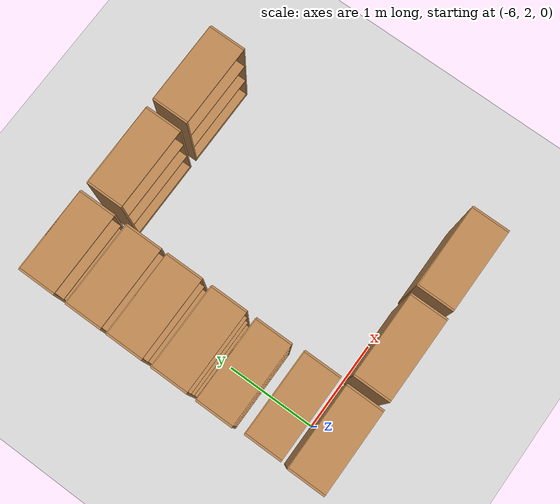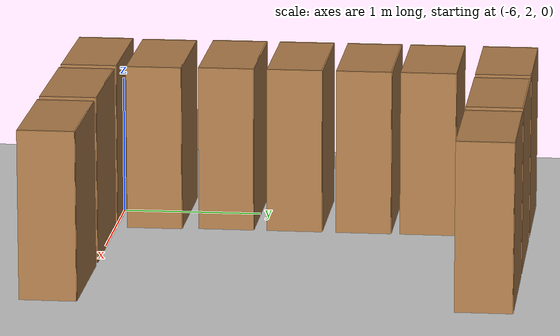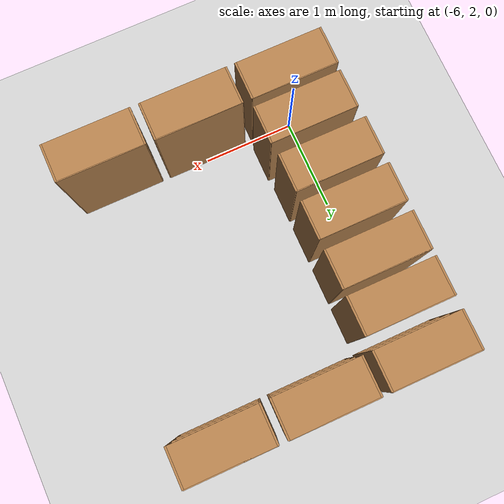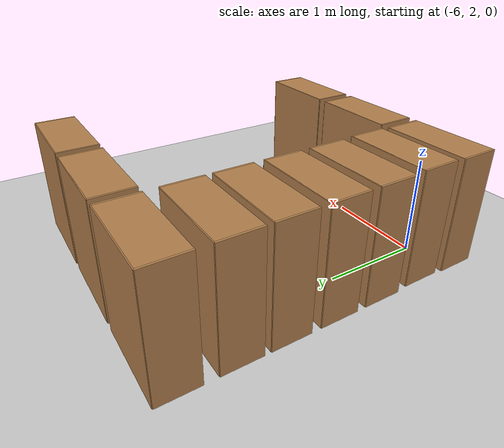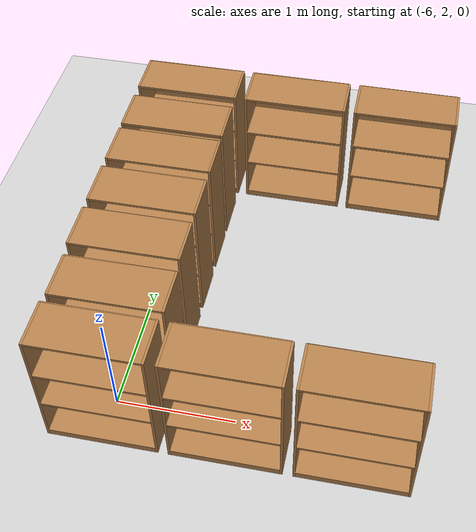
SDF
<sdf version="1.4">
 <world name="default">
  <model name="ground_plane">
   <static>1</static>
   <link name="link">
    <collision name="collision">
     <geometry><plane><normal>0 0 1</normal><size>100 100</size></plane></geometry>
     <surface><friction><ode><mu>100</mu><mu2>50</mu2></ode></friction></surface>
    </collision>
    <visual name="visual">
     <cast_shadows>0</cast_shadows>
     <geometry><plane><normal>0 0 1</normal><size>100 100</size></plane></geometry>
     <material>
      <script><uri>file://media/materials/scripts/gazebo.material</uri><name>Gazebo/Grey</name></script>
     </material>
    </visual>
    <velocity_decay><linear>0</linear><angular>0</angular></velocity_decay>
   </link>
  </model>
  <model name="bookshelf">
   <static>1</static>
   <link name="link">
    <inertial><mass>1</mass></inertial>
    <collision name="back">
     <pose>0 0.005 0.6 0 -0 0</pose>
     <geometry><box><size>0.9 0.01 1.2</size></box></geometry>
    </collision>
    <visual name="visual1">
     <pose>0 0.005 0.6 0 -0 0</pose>
     <geometry><box><size>0.9 0.01 1.2</size></box></geometry>
     <material>
      <script><uri>file://media/materials/scripts/gazebo.material</uri><name>Gazebo/Wood</name></script>
     </material>
    </visual>
    <collision name="left_side">
     <pose>0.45 -0.195 0.6 0 -0 0</pose>
     <geometry><box><size>0.02 0.4 1.2</size></box></geometry>
    </collision>
    <visual name="visual2">
     <pose>0.45 -0.195 0.6 0 -0 0</pose>
     <geometry><box><size>0.02 0.4 1.2</size></box></geometry>
     <material>
      <script><uri>file://media/materials/scripts/gazebo.material</uri><name>Gazebo/Wood</name></script>
     </material>
    </visual>
    <collision name="right_side">
     <pose>-0.45 -0.195 0.6 0 -0 0</pose>
     <geometry><box><size>0.02 0.4 1.2</size></box></geometry>
    </collision>
    <visual name="visual3">
     <pose>-0.45 -0.195 0.6 0 -0 0</pose>
     <geometry><box><size>0.02 0.4 1.2</size></box></geometry>
     <material>
      <script><uri>file://media/materials/scripts/gazebo.material</uri><name>Gazebo/Wood</name></script>
     </material>
    </visual>
    <collision name="bottom">
     <pose>0 -0.195 0.03 0 -0 0</pose>
     <geometry><box><size>0.88 0.4 0.06</size></box></geometry>
    </collision>
    <visual name="visual4">
     <pose>0 -0.195 0.03 0 -0 0</pose>
     <geometry><box><size>0.88 0.4 0.06</size></box></geometry>
     <material>
      <script><uri>file://media/materials/scripts/gazebo.material</uri><name>Gazebo/Wood</name></script>
     </material>
    </visual>
    <collision name="top">
     <pose>0 -0.195 1.19 0 -0 0</pose>
     <geometry><box><size>0.88 0.4 0.02</size></box></geometry>
    </collision>
    <visual name="visual5">
     <pose>0 -0.195 1.19 0 -0 0</pose>
     <geometry><box><size>0.88 0.4 0.02</size></box></geometry>
     <material>
      <script><uri>file://media/materials/scripts/gazebo.material</uri><name>Gazebo/Wood</name></script>
     </material>
    </visual>
    <collision name="low_shelf">
     <pose>0 -0.195 0.43 0 -0 0</pose>
     <geometry><box><size>0.88 0.4 0.02</size></box></geometry>
    </collision>
    <visual name="visual6">
     <pose>0 -0.195 0.43 0 -0 0</pose>
     <geometry><box><size>0.88 0.4 0.02</size></box></geometry>
     <material>
      <script><uri>file://media/materials/scripts/gazebo.material</uri><name>Gazebo/Wood</name></script>
     </material>
    </visual>
    <collision name="high_shelf">
     <pose>0 -0.195 0.8 0 -0 0</pose>
     <geometry><box><size>0.88 0.4 0.02</size></box></geometry>
    </collision>
    <visual name="visual7">
     <pose>0 -0.195 0.8 0 -0 0</pose>
     <geometry><box><size>0.88 0.4 0.02</size></box></geometry>
     <material>
      <script><uri>file://media/materials/scripts/gazebo.material</uri><name>Gazebo/Wood</name></script>
     </material>
    </visual>
    <velocity_decay><linear>0</linear><angular>0</angular></velocity_decay>
   </link>
   <pose>-5 2 0 0 -0 0</pose>
  </model>
  <model name="bookshelf_0">
   <static>1</static>
   <link name="link">
    <inertial><mass>1</mass></inertial>
    <collision name="back">
     <pose>0 0.005 0.6 0 -0 0</pose>
     <geometry><box><size>0.9 0.01 1.2</size></box></geometry>
    </collision>
    <visual name="visual1">
     <pose>0 0.005 0.6 0 -0 0</pose>
     <geometry><box><size>0.9 0.01 1.2</size></box></geometry>
     <material>
      <script><uri>file://media/materials/scripts/gazebo.material</uri><name>Gazebo/Wood</name></script>
     </material>
    </visual>
    <collision name="left_side">
     <pose>0.45 -0.195 0.6 0 -0 0</pose>
     <geometry><box><size>0.02 0.4 1.2</size></box></geometry>
    </collision>
    <visual name="visual2">
     <pose>0.45 -0.195 0.6 0 -0 0</pose>
     <geometry><box><size>0.02 0.4 1.2</size></box></geometry>
     <material>
      <script><uri>file://media/materials/scripts/gazebo.material</uri><name>Gazebo/Wood</name></script>
     </material>
    </visual>
    <collision name="right_side">
     <pose>-0.45 -0.195 0.6 0 -0 0</pose>
     <geometry><box><size>0.02 0.4 1.2</size></box></geometry>
    </collision>
    <visual name="visual3">
     <pose>-0.45 -0.195 0.6 0 -0 0</pose>
     <geometry><box><size>0.02 0.4 1.2</size></box></geometry>
     <material>
      <script><uri>file://media/materials/scripts/gazebo.material</uri><name>Gazebo/Wood</name></script>
     </material>
    </visual>
    <collision name="bottom">
     <pose>0 -0.195 0.03 0 -0 0</pose>
     <geometry><box><size>0.88 0.4 0.06</size></box></geometry>
    </collision>
    <visual name="visual4">
     <pose>0 -0.195 0.03 0 -0 0</pose>
     <geometry><box><size>0.88 0.4 0.06</size></box></geometry>
     <material>
      <script><uri>file://media/materials/scripts/gazebo.material</uri><name>Gazebo/Wood</name></script>
     </material>
    </visual>
    <collision name="top">
     <pose>0 -0.195 1.19 0 -0 0</pose>
     <geometry><box><size>0.88 0.4 0.02</size></box></geometry>
    </collision>
    <visual name="visual5">
     <pose>0 -0.195 1.19 0 -0 0</pose>
     <geometry><box><size>0.88 0.4 0.02</size></box></geometry>
     <material>
      <script><uri>file://media/materials/scripts/gazebo.material</uri><name>Gazebo/Wood</name></script>
     </material>
    </visual>
    <collision name="low_shelf">
     <pose>0 -0.195 0.43 0 -0 0</pose>
     <geometry><box><size>0.88 0.4 0.02</size></box></geometry>
    </collision>
    <visual name="visual6">
     <pose>0 -0.195 0.43 0 -0 0</pose>
     <geometry><box><size>0.88 0.4 0.02</size></box></geometry>
     <material>
      <script><uri>file://media/materials/scripts/gazebo.material</uri><name>Gazebo/Wood</name></script>
     </material>
    </visual>
    <collision name="high_shelf">
     <pose>0 -0.195 0.8 0 -0 0</pose>
     <geometry><box><size>0.88 0.4 0.02</size></box></geometry>
    </collision>
    <visual name="visual7">
     <pose>0 -0.195 0.8 0 -0 0</pose>
     <geometry><box><size>0.88 0.4 0.02</size></box></geometry>
     <material>
      <script><uri>file://media/materials/scripts/gazebo.material</uri><name>Gazebo/Wood</name></script>
     </material>
    </visual>
    <velocity_decay><linear>0</linear><angular>0</angular></velocity_decay>
   </link>
   <pose>-4 2 0 0 -0 0</pose>
  </model>
  <model name="bookshelf_4">
   <static>1</static>
   <link name="link">
    <inertial><mass>1</mass></inertial>
    <collision name="back">
     <pose>0 0.005 0.6 0 -0 0</pose>
     <geometry><box><size>0.9 0.01 1.2</size></box></geometry>
    </collision>
    <visual name="visual1">
     <pose>0 0.005 0.6 0 -0 0</pose>
     <geometry><box><size>0.9 0.01 1.2</size></box></geometry>
     <material>
      <script><uri>file://media/materials/scripts/gazebo.material</uri><name>Gazebo/Wood</name></script>
     </material>
    </visual>
    <collision name="left_side">
     <pose>0.45 -0.195 0.6 0 -0 0</pose>
     <geometry><box><size>0.02 0.4 1.2</size></box></geometry>
    </collision>
    <visual name="visual2">
     <pose>0.45 -0.195 0.6 0 -0 0</pose>
     <geometry><box><size>0.02 0.4 1.2</size></box></geometry>
     <material>
      <script><uri>file://media/materials/scripts/gazebo.material</uri><name>Gazebo/Wood</name></script>
     </material>
    </visual>
    <collision name="right_side">
     <pose>-0.45 -0.195 0.6 0 -0 0</pose>
     <geometry><box><size>0.02 0.4 1.2</size></box></geometry>
    </collision>
    <visual name="visual3">
     <pose>-0.45 -0.195 0.6 0 -0 0</pose>
     <geometry><box><size>0.02 0.4 1.2</size></box></geometry>
     <material>
      <script><uri>file://media/materials/scripts/gazebo.material</uri><name>Gazebo/Wood</name></script>
     </material>
    </visual>
    <collision name="bottom">
     <pose>0 -0.195 0.03 0 -0 0</pose>
     <geometry><box><size>0.88 0.4 0.06</size></box></geometry>
    </collision>
    <visual name="visual4">
     <pose>0 -0.195 0.03 0 -0 0</pose>
     <geometry><box><size>0.88 0.4 0.06</size></box></geometry>
     <material>
      <script><uri>file://media/materials/scripts/gazebo.material</uri><name>Gazebo/Wood</name></script>
     </material>
    </visual>
    <collision name="top">
     <pose>0 -0.195 1.19 0 -0 0</pose>
     <geometry><box><size>0.88 0.4 0.02</size></box></geometry>
    </collision>
    <visual name="visual5">
     <pose>0 -0.195 1.19 0 -0 0</pose>
     <geometry><box><size>0.88 0.4 0.02</size></box></geometry>
     <material>
      <script><uri>file://media/materials/scripts/gazebo.material</uri><name>Gazebo/Wood</name></script>
     </material>
    </visual>
    <collision name="low_shelf">
     <pose>0 -0.195 0.43 0 -0 0</pose>
     <geometry><box><size>0.88 0.4 0.02</size></box></geometry>
    </collision>
    <visual name="visual6">
     <pose>0 -0.195 0.43 0 -0 0</pose>
     <geometry><box><size>0.88 0.4 0.02</size></box></geometry>
     <material>
      <script><uri>file://media/materials/scripts/gazebo.material</uri><name>Gazebo/Wood</name></script>
     </material>
    </visual>
    <collision name="high_shelf">
     <pose>0 -0.195 0.8 0 -0 0</pose>
     <geometry><box><size>0.88 0.4 0.02</size></box></geometry>
    </collision>
    <visual name="visual7">
     <pose>0 -0.195 0.8 0 -0 0</pose>
     <geometry><box><size>0.88 0.4 0.02</size></box></geometry>
     <material>
      <script><uri>file://media/materials/scripts/gazebo.material</uri><name>Gazebo/Wood</name></script>
     </material>
    </visual>
    <velocity_decay><linear>0</linear><angular>0</angular></velocity_decay>
   </link>
   <pose>-5 5 0 0 -0 0</pose>
  </model>
  <model name="bookshelf_5">
   <static>1</static>
   <link name="link">
    <inertial><mass>1</mass></inertial>
    <collision name="back">
     <pose>0 0.005 0.6 0 -0 0</pose>
     <geometry><box><size>0.9 0.01 1.2</size></box></geometry>
    </collision>
    <visual name="visual1">
     <pose>0 0.005 0.6 0 -0 0</pose>
     <geometry><box><size>0.9 0.01 1.2</size></box></geometry>
     <material>
      <script><uri>file://media/materials/scripts/gazebo.material</uri><name>Gazebo/Wood</name></script>
     </material>
    </visual>
    <collision name="left_side">
     <pose>0.45 -0.195 0.6 0 -0 0</pose>
     <geometry><box><size>0.02 0.4 1.2</size></box></geometry>
    </collision>
    <visual name="visual2">
     <pose>0.45 -0.195 0.6 0 -0 0</pose>
     <geometry><box><size>0.02 0.4 1.2</size></box></geometry>
     <material>
      <script><uri>file://media/materials/scripts/gazebo.material</uri><name>Gazebo/Wood</name></script>
     </material>
    </visual>
    <collision name="right_side">
     <pose>-0.45 -0.195 0.6 0 -0 0</pose>
     <geometry><box><size>0.02 0.4 1.2</size></box></geometry>
    </collision>
    <visual name="visual3">
     <pose>-0.45 -0.195 0.6 0 -0 0</pose>
     <geometry><box><size>0.02 0.4 1.2</size></box></geometry>
     <material>
      <script><uri>file://media/materials/scripts/gazebo.material</uri><name>Gazebo/Wood</name></script>
     </material>
    </visual>
    <collision name="bottom">
     <pose>0 -0.195 0.03 0 -0 0</pose>
     <geometry><box><size>0.88 0.4 0.06</size></box></geometry>
    </collision>
    <visual name="visual4">
     <pose>0 -0.195 0.03 0 -0 0</pose>
     <geometry><box><size>0.88 0.4 0.06</size></box></geometry>
     <material>
      <script><uri>file://media/materials/scripts/gazebo.material</uri><name>Gazebo/Wood</name></script>
     </material>
    </visual>
    <collision name="top">
     <pose>0 -0.195 1.19 0 -0 0</pose>
     <geometry><box><size>0.88 0.4 0.02</size></box></geometry>
    </collision>
    <visual name="visual5">
     <pose>0 -0.195 1.19 0 -0 0</pose>
     <geometry><box><size>0.88 0.4 0.02</size></box></geometry>
     <material>
      <script><uri>file://media/materials/scripts/gazebo.material</uri><name>Gazebo/Wood</name></script>
     </material>
    </visual>
    <collision name="low_shelf">
     <pose>0 -0.195 0.43 0 -0 0</pose>
     <geometry><box><size>0.88 0.4 0.02</size></box></geometry>
    </collision>
    <visual name="visual6">
     <pose>0 -0.195 0.43 0 -0 0</pose>
     <geometry><box><size>0.88 0.4 0.02</size></box></geometry>
     <material>
      <script><uri>file://media/materials/scripts/gazebo.material</uri><name>Gazebo/Wood</name></script>
     </material>
    </visual>
    <collision name="high_shelf">
     <pose>0 -0.195 0.8 0 -0 0</pose>
     <geometry><box><size>0.88 0.4 0.02</size></box></geometry>
    </collision>
    <visual name="visual7">
     <pose>0 -0.195 0.8 0 -0 0</pose>
     <geometry><box><size>0.88 0.4 0.02</size></box></geometry>
     <material>
      <script><uri>file://media/materials/scripts/gazebo.material</uri><name>Gazebo/Wood</name></script>
     </material>
    </visual>
    <velocity_decay><linear>0</linear><angular>0</angular></velocity_decay>
   </link>
   <pose>-4 5 0 0 -0 0</pose>
  </model>
  <model name="bookshelf_9">
   <static>1</static>
   <link name="link">
    <inertial><mass>1</mass></inertial>
    <collision name="back">
     <pose>0 0.005 0.6 0 -0 0</pose>
     <geometry><box><size>0.9 0.01 1.2</size></box></geometry>
    </collision>
    <visual name="visual1">
     <pose>0 0.005 0.6 0 -0 0</pose>
     <geometry><box><size>0.9 0.01 1.2</size></box></geometry>
     <material>
      <script><uri>file://media/materials/scripts/gazebo.material</uri><name>Gazebo/Wood</name></script>
     </material>
    </visual>
    <collision name="left_side">
     <pose>0.45 -0.195 0.6 0 -0 0</pose>
     <geometry><box><size>0.02 0.4 1.2</size></box></geometry>
    </collision>
    <visual name="visual2">
     <pose>0.45 -0.195 0.6 0 -0 0</pose>
     <geometry><box><size>0.02 0.4 1.2</size></box></geometry>
     <material>
      <script><uri>file://media/materials/scripts/gazebo.material</uri><name>Gazebo/Wood</name></script>
     </material>
    </visual>
    <collision name="right_side">
     <pose>-0.45 -0.195 0.6 0 -0 0</pose>
     <geometry><box><size>0.02 0.4 1.2</size></box></geometry>
    </collision>
    <visual name="visual3">
     <pose>-0.45 -0.195 0.6 0 -0 0</pose>
     <geometry><box><size>0.02 0.4 1.2</size></box></geometry>
     <material>
      <script><uri>file://media/materials/scripts/gazebo.material</uri><name>Gazebo/Wood</name></script>
     </material>
    </visual>
    <collision name="bottom">
     <pose>0 -0.195 0.03 0 -0 0</pose>
     <geometry><box><size>0.88 0.4 0.06</size></box></geometry>
    </collision>
    <visual name="visual4">
     <pose>0 -0.195 0.03 0 -0 0</pose>
     <geometry><box><size>0.88 0.4 0.06</size></box></geometry>
     <material>
      <script><uri>file://media/materials/scripts/gazebo.material</uri><name>Gazebo/Wood</name></script>
     </material>
    </visual>
    <collision name="top">
     <pose>0 -0.195 1.19 0 -0 0</pose>
     <geometry><box><size>0.88 0.4 0.02</size></box></geometry>
    </collision>
    <visual name="visual5">
     <pose>0 -0.195 1.19 0 -0 0</pose>
     <geometry><box><size>0.88 0.4 0.02</size></box></geometry>
     <material>
      <script><uri>file://media/materials/scripts/gazebo.material</uri><name>Gazebo/Wood</name></script>
     </material>
    </visual>
    <collision name="low_shelf">
     <pose>0 -0.195 0.43 0 -0 0</pose>
     <geometry><box><size>0.88 0.4 0.02</size></box></geometry>
    </collision>
    <visual name="visual6">
     <pose>0 -0.195 0.43 0 -0 0</pose>
     <geometry><box><size>0.88 0.4 0.02</size></box></geometry>
     <material>
      <script><uri>file://media/materials/scripts/gazebo.material</uri><name>Gazebo/Wood</name></script>
     </material>
    </visual>
    <collision name="high_shelf">
     <pose>0 -0.195 0.8 0 -0 0</pose>
     <geometry><box><size>0.88 0.4 0.02</size></box></geometry>
    </collision>
    <visual name="visual7">
     <pose>0 -0.195 0.8 0 -0 0</pose>
     <geometry><box><size>0.88 0.4 0.02</size></box></geometry>
     <material>
      <script><uri>file://media/materials/scripts/gazebo.material</uri><name>Gazebo/Wood</name></script>
     </material>
    </visual>
    <velocity_decay><linear>0</linear><angular>0</angular></velocity_decay>
   </link>
   <pose>-6 2 0 0 -0 0</pose>
  </model>
  <model name="bookshelf_10">
   <static>1</static>
   <link name="link">
    <inertial><mass>1</mass></inertial>
    <collision name="back">
     <pose>0 0.005 0.6 0 -0 0</pose>
     <geometry><box><size>0.9 0.01 1.2</size></box></geometry>
    </collision>
    <visual name="visual1">
     <pose>0 0.005 0.6 0 -0 0</pose>
     <geometry><box><size>0.9 0.01 1.2</size></box></geometry>
     <material>
      <script><uri>file://media/materials/scripts/gazebo.material</uri><name>Gazebo/Wood</name></script>
     </material>
    </visual>
    <collision name="left_side">
     <pose>0.45 -0.195 0.6 0 -0 0</pose>
     <geometry><box><size>0.02 0.4 1.2</size></box></geometry>
    </collision>
    <visual name="visual2">
     <pose>0.45 -0.195 0.6 0 -0 0</pose>
     <geometry><box><size>0.02 0.4 1.2</size></box></geometry>
     <material>
      <script><uri>file://media/materials/scripts/gazebo.material</uri><name>Gazebo/Wood</name></script>
     </material>
    </visual>
    <collision name="right_side">
     <pose>-0.45 -0.195 0.6 0 -0 0</pose>
     <geometry><box><size>0.02 0.4 1.2</size></box></geometry>
    </collision>
    <visual name="visual3">
     <pose>-0.45 -0.195 0.6 0 -0 0</pose>
     <geometry><box><size>0.02 0.4 1.2</size></box></geometry>
     <material>
      <script><uri>file://media/materials/scripts/gazebo.material</uri><name>Gazebo/Wood</name></script>
     </material>
    </visual>
    <collision name="bottom">
     <pose>0 -0.195 0.03 0 -0 0</pose>
     <geometry><box><size>0.88 0.4 0.06</size></box></geometry>
    </collision>
    <visual name="visual4">
     <pose>0 -0.195 0.03 0 -0 0</pose>
     <geometry><box><size>0.88 0.4 0.06</size></box></geometry>
     <material>
      <script><uri>file://media/materials/scripts/gazebo.material</uri><name>Gazebo/Wood</name></script>
     </material>
    </visual>
    <collision name="top">
     <pose>0 -0.195 1.19 0 -0 0</pose>
     <geometry><box><size>0.88 0.4 0.02</size></box></geometry>
    </collision>
    <visual name="visual5">
     <pose>0 -0.195 1.19 0 -0 0</pose>
     <geometry><box><size>0.88 0.4 0.02</size></box></geometry>
     <material>
      <script><uri>file://media/materials/scripts/gazebo.material</uri><name>Gazebo/Wood</name></script>
     </material>
    </visual>
    <collision name="low_shelf">
     <pose>0 -0.195 0.43 0 -0 0</pose>
     <geometry><box><size>0.88 0.4 0.02</size></box></geometry>
    </collision>
    <visual name="visual6">
     <pose>0 -0.195 0.43 0 -0 0</pose>
     <geometry><box><size>0.88 0.4 0.02</size></box></geometry>
     <material>
      <script><uri>file://media/materials/scripts/gazebo.material</uri><name>Gazebo/Wood</name></script>
     </material>
    </visual>
    <collision name="high_shelf">
     <pose>0 -0.195 0.8 0 -0 0</pose>
     <geometry><box><size>0.88 0.4 0.02</size></box></geometry>
    </collision>
    <visual name="visual7">
     <pose>0 -0.195 0.8 0 -0 0</pose>
     <geometry><box><size>0.88 0.4 0.02</size></box></geometry>
     <material>
      <script><uri>file://media/materials/scripts/gazebo.material</uri><name>Gazebo/Wood</name></script>
     </material>
    </visual>
    <velocity_decay><linear>0</linear><angular>0</angular></velocity_decay>
   </link>
   <pose>-5.98174 2.47725 0 0 -0 0</pose>
  </model>
  <model name="bookshelf_13">
   <static>1</static>
   <link name="link">
    <inertial><mass>1</mass></inertial>
    <collision name="back">
     <pose>0 0.005 0.6 0 -0 0</pose>
     <geometry><box><size>0.9 0.01 1.2</size></box></geometry>
    </collision>
    <visual name="visual1">
     <pose>0 0.005 0.6 0 -0 0</pose>
     <geometry><box><size>0.9 0.01 1.2</size></box></geometry>
     <material>
      <script><uri>file://media/materials/scripts/gazebo.material</uri><name>Gazebo/Wood</name></script>
     </material>
    </visual>
    <collision name="left_side">
     <pose>0.45 -0.195 0.6 0 -0 0</pose>
     <geometry><box><size>0.02 0.4 1.2</size></box></geometry>
    </collision>
    <visual name="visual2">
     <pose>0.45 -0.195 0.6 0 -0 0</pose>
     <geometry><box><size>0.02 0.4 1.2</size></box></geometry>
     <material>
      <script><uri>file://media/materials/scripts/gazebo.material</uri><name>Gazebo/Wood</name></script>
     </material>
    </visual>
    <collision name="right_side">
     <pose>-0.45 -0.195 0.6 0 -0 0</pose>
     <geometry><box><size>0.02 0.4 1.2</size></box></geometry>
    </collision>
    <visual name="visual3">
     <pose>-0.45 -0.195 0.6 0 -0 0</pose>
     <geometry><box><size>0.02 0.4 1.2</size></box></geometry>
     <material>
      <script><uri>file://media/materials/scripts/gazebo.material</uri><name>Gazebo/Wood</name></script>
     </material>
    </visual>
    <collision name="bottom">
     <pose>0 -0.195 0.03 0 -0 0</pose>
     <geometry><box><size>0.88 0.4 0.06</size></box></geometry>
    </collision>
    <visual name="visual4">
     <pose>0 -0.195 0.03 0 -0 0</pose>
     <geometry><box><size>0.88 0.4 0.06</size></box></geometry>
     <material>
      <script><uri>file://media/materials/scripts/gazebo.material</uri><name>Gazebo/Wood</name></script>
     </material>
    </visual>
    <collision name="top">
     <pose>0 -0.195 1.19 0 -0 0</pose>
     <geometry><box><size>0.88 0.4 0.02</size></box></geometry>
    </collision>
    <visual name="visual5">
     <pose>0 -0.195 1.19 0 -0 0</pose>
     <geometry><box><size>0.88 0.4 0.02</size></box></geometry>
     <material>
      <script><uri>file://media/materials/scripts/gazebo.material</uri><name>Gazebo/Wood</name></script>
     </material>
    </visual>
    <collision name="low_shelf">
     <pose>0 -0.195 0.43 0 -0 0</pose>
     <geometry><box><size>0.88 0.4 0.02</size></box></geometry>
    </collision>
    <visual name="visual6">
     <pose>0 -0.195 0.43 0 -0 0</pose>
     <geometry><box><size>0.88 0.4 0.02</size></box></geometry>
     <material>
      <script><uri>file://media/materials/scripts/gazebo.material</uri><name>Gazebo/Wood</name></script>
     </material>
    </visual>
    <collision name="high_shelf">
     <pose>0 -0.195 0.8 0 -0 0</pose>
     <geometry><box><size>0.88 0.4 0.02</size></box></geometry>
    </collision>
    <visual name="visual7">
     <pose>0 -0.195 0.8 0 -0 0</pose>
     <geometry><box><size>0.88 0.4 0.02</size></box></geometry>
     <material>
      <script><uri>file://media/materials/scripts/gazebo.material</uri><name>Gazebo/Wood</name></script>
     </material>
    </visual>
    <velocity_decay><linear>0</linear><angular>0</angular></velocity_decay>
   </link>
   <pose>-6 3 0 0 -0 0</pose>
  </model>
  <model name="bookshelf_14">
   <static>1</static>
   <link name="link">
    <inertial><mass>1</mass></inertial>
    <collision name="back">
     <pose>0 0.005 0.6 0 -0 0</pose>
     <geometry><box><size>0.9 0.01 1.2</size></box></geometry>
    </collision>
    <visual name="visual1">
     <pose>0 0.005 0.6 0 -0 0</pose>
     <geometry><box><size>0.9 0.01 1.2</size></box></geometry>
     <material>
      <script><uri>file://media/materials/scripts/gazebo.material</uri><name>Gazebo/Wood</name></script>
     </material>
    </visual>
    <collision name="left_side">
     <pose>0.45 -0.195 0.6 0 -0 0</pose>
     <geometry><box><size>0.02 0.4 1.2</size></box></geometry>
    </collision>
    <visual name="visual2">
     <pose>0.45 -0.195 0.6 0 -0 0</pose>
     <geometry><box><size>0.02 0.4 1.2</size></box></geometry>
     <material>
      <script><uri>file://media/materials/scripts/gazebo.material</uri><name>Gazebo/Wood</name></script>
     </material>
    </visual>
    <collision name="right_side">
     <pose>-0.45 -0.195 0.6 0 -0 0</pose>
     <geometry><box><size>0.02 0.4 1.2</size></box></geometry>
    </collision>
    <visual name="visual3">
     <pose>-0.45 -0.195 0.6 0 -0 0</pose>
     <geometry><box><size>0.02 0.4 1.2</size></box></geometry>
     <material>
      <script><uri>file://media/materials/scripts/gazebo.material</uri><name>Gazebo/Wood</name></script>
     </material>
    </visual>
    <collision name="bottom">
     <pose>0 -0.195 0.03 0 -0 0</pose>
     <geometry><box><size>0.88 0.4 0.06</size></box></geometry>
    </collision>
    <visual name="visual4">
     <pose>0 -0.195 0.03 0 -0 0</pose>
     <geometry><box><size>0.88 0.4 0.06</size></box></geometry>
     <material>
      <script><uri>file://media/materials/scripts/gazebo.material</uri><name>Gazebo/Wood</name></script>
     </material>
    </visual>
    <collision name="top">
     <pose>0 -0.195 1.19 0 -0 0</pose>
     <geometry><box><size>0.88 0.4 0.02</size></box></geometry>
    </collision>
    <visual name="visual5">
     <pose>0 -0.195 1.19 0 -0 0</pose>
     <geometry><box><size>0.88 0.4 0.02</size></box></geometry>
     <material>
      <script><uri>file://media/materials/scripts/gazebo.material</uri><name>Gazebo/Wood</name></script>
     </material>
    </visual>
    <collision name="low_shelf">
     <pose>0 -0.195 0.43 0 -0 0</pose>
     <geometry><box><size>0.88 0.4 0.02</size></box></geometry>
    </collision>
    <visual name="visual6">
     <pose>0 -0.195 0.43 0 -0 0</pose>
     <geometry><box><size>0.88 0.4 0.02</size></box></geometry>
     <material>
      <script><uri>file://media/materials/scripts/gazebo.material</uri><name>Gazebo/Wood</name></script>
     </material>
    </visual>
    <collision name="high_shelf">
     <pose>0 -0.195 0.8 0 -0 0</pose>
     <geometry><box><size>0.88 0.4 0.02</size></box></geometry>
    </collision>
    <visual name="visual7">
     <pose>0 -0.195 0.8 0 -0 0</pose>
     <geometry><box><size>0.88 0.4 0.02</size></box></geometry>
     <material>
      <script><uri>file://media/materials/scripts/gazebo.material</uri><name>Gazebo/Wood</name></script>
     </material>
    </visual>
    <velocity_decay><linear>0</linear><angular>0</angular></velocity_decay>
   </link>
   <pose>-6 3.49798 0 0 -0 0</pose>
  </model>
  <model name="bookshelf_15">
   <static>1</static>
   <link name="link">
    <inertial><mass>1</mass></inertial>
    <collision name="back">
     <pose>0 0.005 0.6 0 -0 0</pose>
     <geometry><box><size>0.9 0.01 1.2</size></box></geometry>
    </collision>
    <visual name="visual1">
     <pose>0 0.005 0.6 0 -0 0</pose>
     <geometry><box><size>0.9 0.01 1.2</size></box></geometry>
     <material>
      <script><uri>file://media/materials/scripts/gazebo.material</uri><name>Gazebo/Wood</name></script>
     </material>
    </visual>
    <collision name="left_side">
     <pose>0.45 -0.195 0.6 0 -0 0</pose>
     <geometry><box><size>0.02 0.4 1.2</size></box></geometry>
    </collision>
    <visual name="visual2">
     <pose>0.45 -0.195 0.6 0 -0 0</pose>
     <geometry><box><size>0.02 0.4 1.2</size></box></geometry>
     <material>
      <script><uri>file://media/materials/scripts/gazebo.material</uri><name>Gazebo/Wood</name></script>
     </material>
    </visual>
    <collision name="right_side">
     <pose>-0.45 -0.195 0.6 0 -0 0</pose>
     <geometry><box><size>0.02 0.4 1.2</size></box></geometry>
    </collision>
    <visual name="visual3">
     <pose>-0.45 -0.195 0.6 0 -0 0</pose>
     <geometry><box><size>0.02 0.4 1.2</size></box></geometry>
     <material>
      <script><uri>file://media/materials/scripts/gazebo.material</uri><name>Gazebo/Wood</name></script>
     </material>
    </visual>
    <collision name="bottom">
     <pose>0 -0.195 0.03 0 -0 0</pose>
     <geometry><box><size>0.88 0.4 0.06</size></box></geometry>
    </collision>
    <visual name="visual4">
     <pose>0 -0.195 0.03 0 -0 0</pose>
     <geometry><box><size>0.88 0.4 0.06</size></box></geometry>
     <material>
      <script><uri>file://media/materials/scripts/gazebo.material</uri><name>Gazebo/Wood</name></script>
     </material>
    </visual>
    <collision name="top">
     <pose>0 -0.195 1.19 0 -0 0</pose>
     <geometry><box><size>0.88 0.4 0.02</size></box></geometry>
    </collision>
    <visual name="visual5">
     <pose>0 -0.195 1.19 0 -0 0</pose>
     <geometry><box><size>0.88 0.4 0.02</size></box></geometry>
     <material>
      <script><uri>file://media/materials/scripts/gazebo.material</uri><name>Gazebo/Wood</name></script>
     </material>
    </visual>
    <collision name="low_shelf">
     <pose>0 -0.195 0.43 0 -0 0</pose>
     <geometry><box><size>0.88 0.4 0.02</size></box></geometry>
    </collision>
    <visual name="visual6">
     <pose>0 -0.195 0.43 0 -0 0</pose>
     <geometry><box><size>0.88 0.4 0.02</size></box></geometry>
     <material>
      <script><uri>file://media/materials/scripts/gazebo.material</uri><name>Gazebo/Wood</name></script>
     </material>
    </visual>
    <collision name="high_shelf">
     <pose>0 -0.195 0.8 0 -0 0</pose>
     <geometry><box><size>0.88 0.4 0.02</size></box></geometry>
    </collision>
    <visual name="visual7">
     <pose>0 -0.195 0.8 0 -0 0</pose>
     <geometry><box><size>0.88 0.4 0.02</size></box></geometry>
     <material>
      <script><uri>file://media/materials/scripts/gazebo.material</uri><name>Gazebo/Wood</name></script>
     </material>
    </visual>
    <velocity_decay><linear>0</linear><angular>0</angular></velocity_decay>
   </link>
   <pose>-6 5 0 0 -0 0</pose>
  </model>
  <model name="bookshelf_16">
   <static>1</static>
   <link name="link">
    <inertial><mass>1</mass></inertial>
    <collision name="back">
     <pose>0 0.005 0.6 0 -0 0</pose>
     <geometry><box><size>0.9 0.01 1.2</size></box></geometry>
    </collision>
    <visual name="visual1">
     <pose>0 0.005 0.6 0 -0 0</pose>
     <geometry><box><size>0.9 0.01 1.2</size></box></geometry>
     <material>
      <script><uri>file://media/materials/scripts/gazebo.material</uri><name>Gazebo/Wood</name></script>
     </material>
    </visual>
    <collision name="left_side">
     <pose>0.45 -0.195 0.6 0 -0 0</pose>
     <geometry><box><size>0.02 0.4 1.2</size></box></geometry>
    </collision>
    <visual name="visual2">
     <pose>0.45 -0.195 0.6 0 -0 0</pose>
     <geometry><box><size>0.02 0.4 1.2</size></box></geometry>
     <material>
      <script><uri>file://media/materials/scripts/gazebo.material</uri><name>Gazebo/Wood</name></script>
     </material>
    </visual>
    <collision name="right_side">
     <pose>-0.45 -0.195 0.6 0 -0 0</pose>
     <geometry><box><size>0.02 0.4 1.2</size></box></geometry>
    </collision>
    <visual name="visual3">
     <pose>-0.45 -0.195 0.6 0 -0 0</pose>
     <geometry><box><size>0.02 0.4 1.2</size></box></geometry>
     <material>
      <script><uri>file://media/materials/scripts/gazebo.material</uri><name>Gazebo/Wood</name></script>
     </material>
    </visual>
    <collision name="bottom">
     <pose>0 -0.195 0.03 0 -0 0</pose>
     <geometry><box><size>0.88 0.4 0.06</size></box></geometry>
    </collision>
    <visual name="visual4">
     <pose>0 -0.195 0.03 0 -0 0</pose>
     <geometry><box><size>0.88 0.4 0.06</size></box></geometry>
     <material>
      <script><uri>file://media/materials/scripts/gazebo.material</uri><name>Gazebo/Wood</name></script>
     </material>
    </visual>
    <collision name="top">
     <pose>0 -0.195 1.19 0 -0 0</pose>
     <geometry><box><size>0.88 0.4 0.02</size></box></geometry>
    </collision>
    <visual name="visual5">
     <pose>0 -0.195 1.19 0 -0 0</pose>
     <geometry><box><size>0.88 0.4 0.02</size></box></geometry>
     <material>
      <script><uri>file://media/materials/scripts/gazebo.material</uri><name>Gazebo/Wood</name></script>
     </material>
    </visual>
    <collision name="low_shelf">
     <pose>0 -0.195 0.43 0 -0 0</pose>
     <geometry><box><size>0.88 0.4 0.02</size></box></geometry>
    </collision>
    <visual name="visual6">
     <pose>0 -0.195 0.43 0 -0 0</pose>
     <geometry><box><size>0.88 0.4 0.02</size></box></geometry>
     <material>
      <script><uri>file://media/materials/scripts/gazebo.material</uri><name>Gazebo/Wood</name></script>
     </material>
    </visual>
    <collision name="high_shelf">
     <pose>0 -0.195 0.8 0 -0 0</pose>
     <geometry><box><size>0.88 0.4 0.02</size></box></geometry>
    </collision>
    <visual name="visual7">
     <pose>0 -0.195 0.8 0 -0 0</pose>
     <geometry><box><size>0.88 0.4 0.02</size></box></geometry>
     <material>
      <script><uri>file://media/materials/scripts/gazebo.material</uri><name>Gazebo/Wood</name></script>
     </material>
    </visual>
    <velocity_decay><linear>0</linear><angular>0</angular></velocity_decay>
   </link>
   <pose>-6 4 0 0 -0 0</pose>
  </model>
  <model name="bookshelf_17">
   <static>1</static>
   <link name="link">
    <inertial><mass>1</mass></inertial>
    <collision name="back">
     <pose>0 0.005 0.6 0 -0 0</pose>
     <geometry><box><size>0.9 0.01 1.2</size></box></geometry>
    </collision>
    <visual name="visual1">
     <pose>0 0.005 0.6 0 -0 0</pose>
     <geometry><box><size>0.9 0.01 1.2</size></box></geometry>
     <material>
      <script><uri>file://media/materials/scripts/gazebo.material</uri><name>Gazebo/Wood</name></script>
     </material>
    </visual>
    <collision name="left_side">
     <pose>0.45 -0.195 0.6 0 -0 0</pose>
     <geometry><box><size>0.02 0.4 1.2</size></box></geometry>
    </collision>
    <visual name="visual2">
     <pose>0.45 -0.195 0.6 0 -0 0</pose>
     <geometry><box><size>0.02 0.4 1.2</size></box></geometry>
     <material>
      <script><uri>file://media/materials/scripts/gazebo.material</uri><name>Gazebo/Wood</name></script>
     </material>
    </visual>
    <collision name="right_side">
     <pose>-0.45 -0.195 0.6 0 -0 0</pose>
     <geometry><box><size>0.02 0.4 1.2</size></box></geometry>
    </collision>
    <visual name="visual3">
     <pose>-0.45 -0.195 0.6 0 -0 0</pose>
     <geometry><box><size>0.02 0.4 1.2</size></box></geometry>
     <material>
      <script><uri>file://media/materials/scripts/gazebo.material</uri><name>Gazebo/Wood</name></script>
     </material>
    </visual>
    <collision name="bottom">
     <pose>0 -0.195 0.03 0 -0 0</pose>
     <geometry><box><size>0.88 0.4 0.06</size></box></geometry>
    </collision>
    <visual name="visual4">
     <pose>0 -0.195 0.03 0 -0 0</pose>
     <geometry><box><size>0.88 0.4 0.06</size></box></geometry>
     <material>
      <script><uri>file://media/materials/scripts/gazebo.material</uri><name>Gazebo/Wood</name></script>
     </material>
    </visual>
    <collision name="top">
     <pose>0 -0.195 1.19 0 -0 0</pose>
     <geometry><box><size>0.88 0.4 0.02</size></box></geometry>
    </collision>
    <visual name="visual5">
     <pose>0 -0.195 1.19 0 -0 0</pose>
     <geometry><box><size>0.88 0.4 0.02</size></box></geometry>
     <material>
      <script><uri>file://media/materials/scripts/gazebo.material</uri><name>Gazebo/Wood</name></script>
     </material>
    </visual>
    <collision name="low_shelf">
     <pose>0 -0.195 0.43 0 -0 0</pose>
     <geometry><box><size>0.88 0.4 0.02</size></box></geometry>
    </collision>
    <visual name="visual6">
     <pose>0 -0.195 0.43 0 -0 0</pose>
     <geometry><box><size>0.88 0.4 0.02</size></box></geometry>
     <material>
      <script><uri>file://media/materials/scripts/gazebo.material</uri><name>Gazebo/Wood</name></script>
     </material>
    </visual>
    <collision name="high_shelf">
     <pose>0 -0.195 0.8 0 -0 0</pose>
     <geometry><box><size>0.88 0.4 0.02</size></box></geometry>
    </collision>
    <visual name="visual7">
     <pose>0 -0.195 0.8 0 -0 0</pose>
     <geometry><box><size>0.88 0.4 0.02</size></box></geometry>
     <material>
      <script><uri>file://media/materials/scripts/gazebo.material</uri><name>Gazebo/Wood</name></script>
     </material>
    </visual>
    <velocity_decay><linear>0</linear><angular>0</angular></velocity_decay>
   </link>
   <pose>-6 4.46509 0 0 -0 0</pose>
  </model>
 </world>
</sdf>
